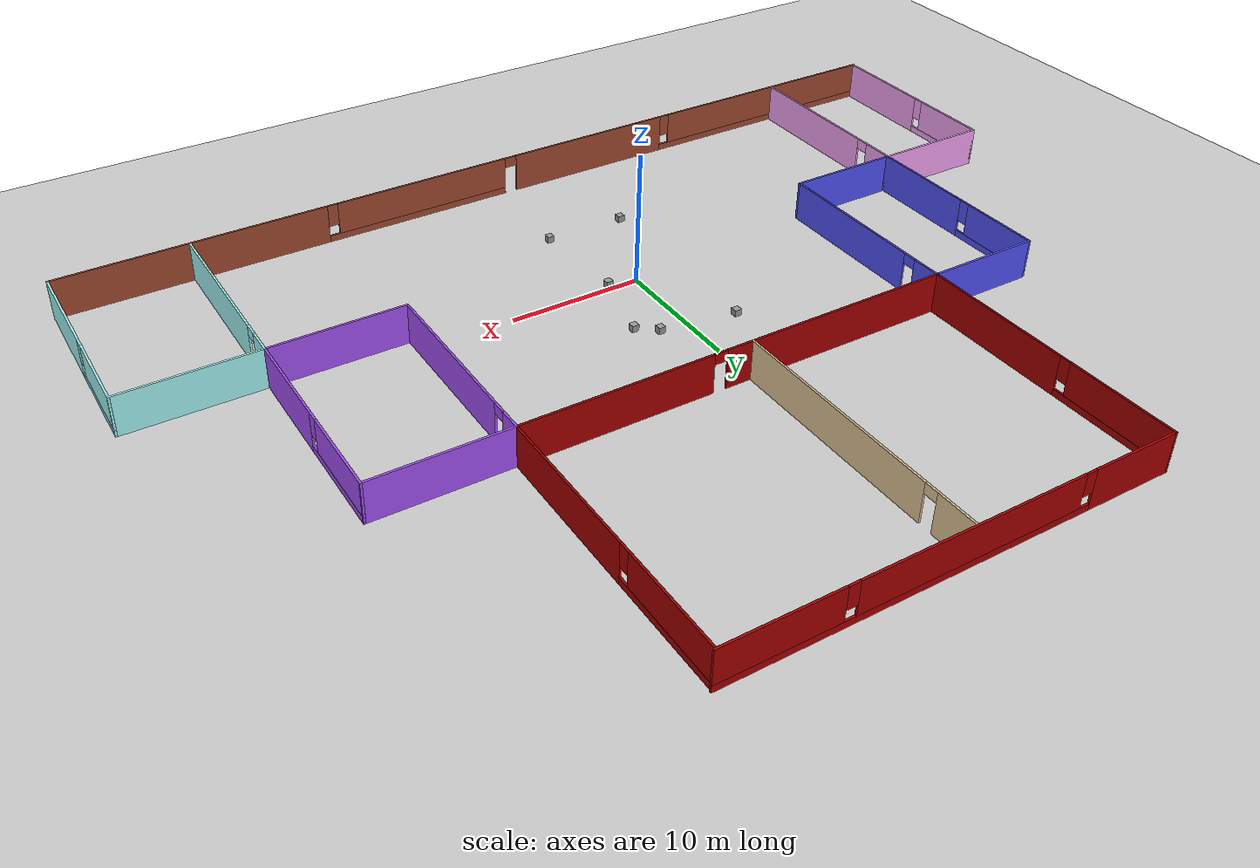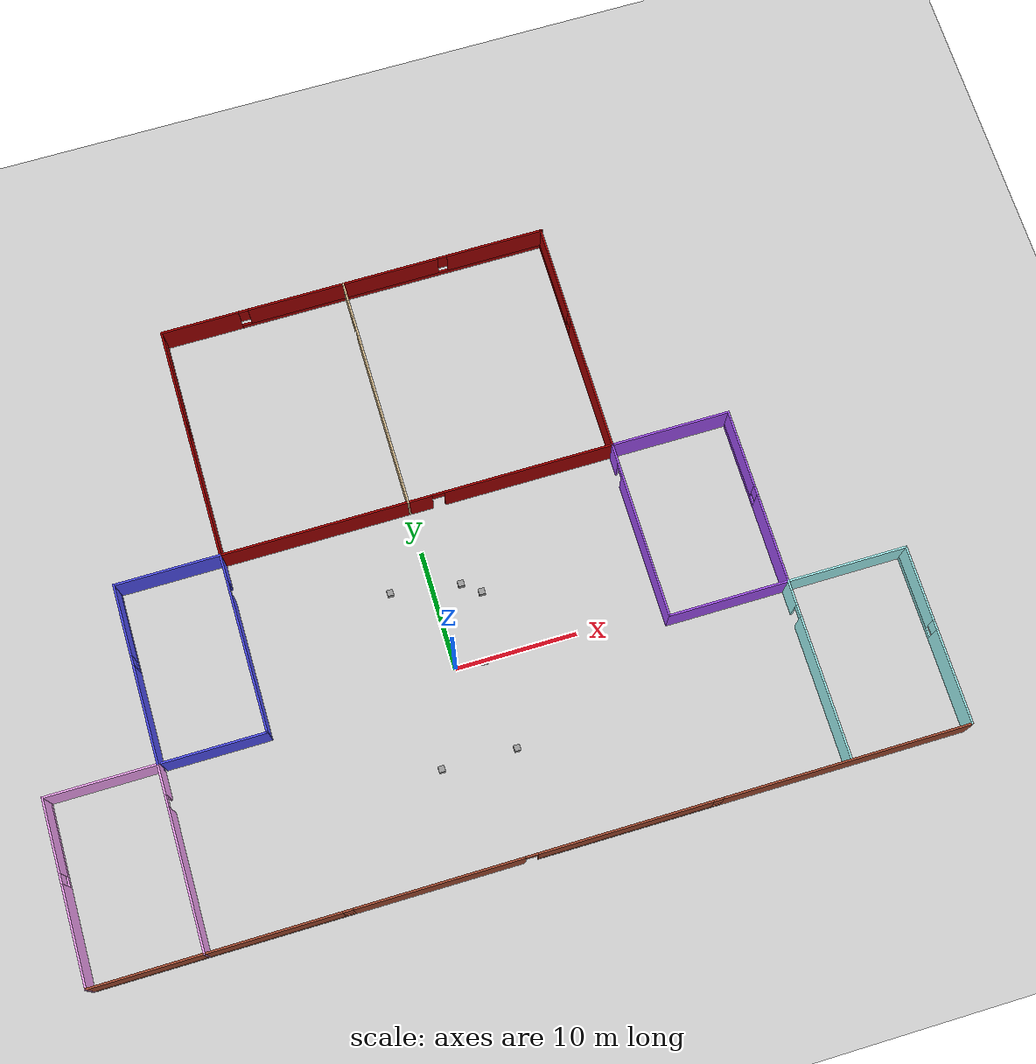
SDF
<sdf version="1.6">
 <world name="default">
  <model name="ground_plane">
   <static>1</static>
   <link name="link">
    <collision name="collision">
     <geometry><plane><normal>0 0 1</normal><size>100 100</size></plane></geometry>
     <surface>
      <contact><collide_bitmask>65535</collide_bitmask></contact>
      <friction><ode><mu>100</mu><mu2>50</mu2></ode></friction>
     </surface>
    </collision>
    <visual name="visual">
     <cast_shadows>0</cast_shadows>
     <geometry><plane><normal>0 0 1</normal><size>100 100</size></plane></geometry>
     <material>
      <script><uri>file://media/materials/scripts/gazebo.material</uri><name>Gazebo/Grey</name></script>
     </material>
    </visual>
   </link>
  </model>
  <model name="myworld">
   <pose>1.87282 8.5844 0 0 -0 0</pose>
   <link name="Wall_13">
    <pose>1e-06 -24.775 0 0 -0 3.14159</pose>
    <visual name="Wall_13_Visual_0">
     <pose>-24.8847 0 1.5 0 -0 0</pose>
     <geometry><box><size>20.2306 0.15 3</size></box></geometry>
     <material>
      <script><uri>file://media/materials/scripts/gazebo.material</uri><name>Gazebo/Bricks</name></script>
      <ambient>1 1 1 1</ambient>
     </material>
     <meta><layer>0</layer></meta>
    </visual>
    <collision name="Wall_13_Collision_0">
     <geometry><box><size>20.2306 0.15 3</size></box></geometry>
     <pose>-24.8847 0 1.5 0 -0 0</pose>
    </collision>
    <visual name="Wall_13_Visual_1">
     <pose>7.72446 0 1.5 0 -0 0</pose>
     <geometry><box><size>13.4735 0.15 3</size></box></geometry>
     <material>
      <script><uri>file://media/materials/scripts/gazebo.material</uri><name>Gazebo/Bricks</name></script>
      <ambient>1 1 1 1</ambient>
     </material>
     <meta><layer>0</layer></meta>
    </visual>
    <collision name="Wall_13_Collision_1">
     <geometry><box><size>13.4735 0.15 3</size></box></geometry>
     <pose>7.72446 0 1.5 0 -0 0</pose>
    </collision>
    <visual name="Wall_13_Visual_2">
     <pose>-7.39085 0 0.25 0 -0 0</pose>
     <geometry><box><size>14.7571 0.15 0.5</size></box></geometry>
     <material>
      <script><uri>file://media/materials/scripts/gazebo.material</uri><name>Gazebo/Bricks</name></script>
      <ambient>1 1 1 1</ambient>
     </material>
     <meta><layer>0</layer></meta>
    </visual>
    <collision name="Wall_13_Collision_2">
     <geometry><box><size>14.7571 0.15 0.5</size></box></geometry>
     <pose>-7.39085 0 0.25 0 -0 0</pose>
    </collision>
    <visual name="Wall_13_Visual_3">
     <pose>24.7306 0 0.25 0 -0 0</pose>
     <geometry><box><size>20.5388 0.15 0.5</size></box></geometry>
     <material>
      <script><uri>file://media/materials/scripts/gazebo.material</uri><name>Gazebo/Bricks</name></script>
      <ambient>1 1 1 1</ambient>
     </material>
     <meta><layer>0</layer></meta>
    </visual>
    <collision name="Wall_13_Collision_3">
     <geometry><box><size>20.5388 0.15 0.5</size></box></geometry>
     <pose>24.7306 0 0.25 0 -0 0</pose>
    </collision>
    <visual name="Wall_13_Visual_5">
     <pose>-6.99085 0 1.75 0 -0 0</pose>
     <geometry><box><size>13.9571 0.15 2.5</size></box></geometry>
     <material>
      <script><uri>file://media/materials/scripts/gazebo.material</uri><name>Gazebo/Bricks</name></script>
      <ambient>1 1 1 1</ambient>
     </material>
     <meta><layer>0</layer></meta>
    </visual>
    <collision name="Wall_13_Collision_5">
     <geometry><box><size>13.9571 0.15 2.5</size></box></geometry>
     <pose>-6.99085 0 1.75 0 -0 0</pose>
    </collision>
    <visual name="Wall_13_Visual_6">
     <pose>-6.99085 0 1.75 0 -0 0</pose>
     <geometry><box><size>13.9571 0.15 2.5</size></box></geometry>
     <material>
      <script><uri>file://media/materials/scripts/gazebo.material</uri><name>Gazebo/Bricks</name></script>
      <ambient>1 1 1 1</ambient>
     </material>
     <meta><layer>0</layer></meta>
    </visual>
    <collision name="Wall_13_Collision_6">
     <geometry><box><size>13.9571 0.15 2.5</size></box></geometry>
     <pose>-6.99085 0 1.75 0 -0 0</pose>
    </collision>
    <visual name="Wall_13_Visual_7">
     <pose>25.1306 0 1.75 0 -0 0</pose>
     <geometry><box><size>19.7388 0.15 2.5</size></box></geometry>
     <material>
      <script><uri>file://media/materials/scripts/gazebo.material</uri><name>Gazebo/Bricks</name></script>
      <ambient>1 1 1 1</ambient>
     </material>
     <meta><layer>0</layer></meta>
    </visual>
    <collision name="Wall_13_Collision_7">
     <geometry><box><size>19.7388 0.15 2.5</size></box></geometry>
     <pose>25.1306 0 1.75 0 -0 0</pose>
    </collision>
    <visual name="Wall_13_Visual_8">
     <pose>-14.3694 0 2.15 0 -0 0</pose>
     <geometry><box><size>0.8 0.15 1.7</size></box></geometry>
     <material>
      <script><uri>file://media/materials/scripts/gazebo.material</uri><name>Gazebo/Bricks</name></script>
      <ambient>1 1 1 1</ambient>
     </material>
     <meta><layer>0</layer></meta>
    </visual>
    <collision name="Wall_13_Collision_8">
     <geometry><box><size>0.8 0.15 1.7</size></box></geometry>
     <pose>-14.3694 0 2.15 0 -0 0</pose>
    </collision>
    <visual name="Wall_13_Visual_9">
     <pose>14.8612 0 2.15 0 -0 0</pose>
     <geometry><box><size>0.8 0.15 1.7</size></box></geometry>
     <material>
      <script><uri>file://media/materials/scripts/gazebo.material</uri><name>Gazebo/Bricks</name></script>
      <ambient>1 1 1 1</ambient>
     </material>
     <meta><layer>0</layer></meta>
    </visual>
    <collision name="Wall_13_Collision_9">
     <geometry><box><size>0.8 0.15 1.7</size></box></geometry>
     <pose>14.8612 0 2.15 0 -0 0</pose>
    </collision>
    <visual name="Wall_13_Visual_10">
     <pose>0.487698 0 2.6 0 -0 0</pose>
     <geometry><box><size>1 0.15 0.8</size></box></geometry>
     <material>
      <script><uri>file://media/materials/scripts/gazebo.material</uri><name>Gazebo/Bricks</name></script>
      <ambient>1 1 1 1</ambient>
     </material>
     <meta><layer>0</layer></meta>
    </visual>
    <collision name="Wall_13_Collision_10">
     <geometry><box><size>1 0.15 0.8</size></box></geometry>
     <pose>0.487698 0 2.6 0 -0 0</pose>
    </collision>
    <visual name="Wall_13_Visual_11">
     <pose>0.487698 0 2.6 0 -0 0</pose>
     <geometry><box><size>1 0.15 0.8</size></box></geometry>
     <material>
      <script><uri>file://media/materials/scripts/gazebo.material</uri><name>Gazebo/Bricks</name></script>
      <ambient>1 1 1 1</ambient>
     </material>
     <meta><layer>0</layer></meta>
    </visual>
    <collision name="Wall_13_Collision_11">
     <geometry><box><size>1 0.15 0.8</size></box></geometry>
     <pose>0.487698 0 2.6 0 -0 0</pose>
    </collision>
   </link>
   <link name="Wall_14">
    <pose>-34.925 -17.35 0 0 -0 1.5708</pose>
    <visual name="Wall_14_Visual_0">
     <pose>-3.43526 0 1.5 0 -0 0</pose>
     <geometry><box><size>8.12947 0.15 3</size></box></geometry>
     <material>
      <script><uri>file://media/materials/scripts/gazebo.material</uri><name>Gazebo/Grey</name></script>
      <ambient>1 0.666667 1 1</ambient>
     </material>
     <meta><layer>0</layer></meta>
    </visual>
    <collision name="Wall_14_Collision_0">
     <geometry><box><size>8.12947 0.15 3</size></box></geometry>
     <pose>-3.43526 0 1.5 0 -0 0</pose>
    </collision>
    <visual name="Wall_14_Visual_1">
     <pose>4.06474 0 0.25 0 -0 0</pose>
     <geometry><box><size>6.87052 0.15 0.5</size></box></geometry>
     <material>
      <script><uri>file://media/materials/scripts/gazebo.material</uri><name>Gazebo/Grey</name></script>
      <ambient>1 0.666667 1 1</ambient>
     </material>
     <meta><layer>0</layer></meta>
    </visual>
    <collision name="Wall_14_Collision_1">
     <geometry><box><size>6.87052 0.15 0.5</size></box></geometry>
     <pose>4.06474 0 0.25 0 -0 0</pose>
    </collision>
    <visual name="Wall_14_Visual_2">
     <pose>4.46474 0 1.75 0 -0 0</pose>
     <geometry><box><size>6.07052 0.15 2.5</size></box></geometry>
     <material>
      <script><uri>file://media/materials/scripts/gazebo.material</uri><name>Gazebo/Grey</name></script>
      <ambient>1 0.666667 1 1</ambient>
     </material>
     <meta><layer>0</layer></meta>
    </visual>
    <collision name="Wall_14_Collision_2">
     <geometry><box><size>6.07052 0.15 2.5</size></box></geometry>
     <pose>4.46474 0 1.75 0 -0 0</pose>
    </collision>
    <visual name="Wall_14_Visual_3">
     <pose>1.02947 0 2.15 0 -0 0</pose>
     <geometry><box><size>0.8 0.15 1.7</size></box></geometry>
     <material>
      <script><uri>file://media/materials/scripts/gazebo.material</uri><name>Gazebo/Grey</name></script>
      <ambient>1 0.666667 1 1</ambient>
     </material>
     <meta><layer>0</layer></meta>
    </visual>
    <collision name="Wall_14_Collision_3">
     <geometry><box><size>0.8 0.15 1.7</size></box></geometry>
     <pose>1.02947 0 2.15 0 -0 0</pose>
    </collision>
   </link>
   <link name="Wall_15">
    <collision name="Wall_15_Collision">
     <geometry><box><size>9.165 0.15 3</size></box></geometry>
     <pose>0 0 1.5 0 -0 0</pose>
    </collision>
    <visual name="Wall_15_Visual">
     <pose>0 0 1.5 0 -0 0</pose>
     <geometry><box><size>9.165 0.15 3</size></box></geometry>
     <material>
      <script><uri>file://media/materials/scripts/gazebo.material</uri><name>Gazebo/Grey</name></script>
      <ambient>1 0.666667 1 1</ambient>
     </material>
     <meta><layer>0</layer></meta>
    </visual>
    <pose>-30.4175 -9.925 0 0 -0 0</pose>
   </link>
   <link name="Wall_21">
    <pose>-25.91 -2.5 0 0 -0 1.5708</pose>
    <visual name="Wall_21_Visual_0">
     <pose>-3.41555 0 1.5 0 -0 0</pose>
     <geometry><box><size>8.16889 0.15 3</size></box></geometry>
     <material>
      <script><uri>file://media/materials/scripts/gazebo.material</uri><name>Gazebo/Grey</name></script>
      <ambient>0.333333 0.333333 1 1</ambient>
     </material>
     <meta><layer>0</layer></meta>
    </visual>
    <collision name="Wall_21_Collision_0">
     <geometry><box><size>8.16889 0.15 3</size></box></geometry>
     <pose>-3.41555 0 1.5 0 -0 0</pose>
    </collision>
    <visual name="Wall_21_Visual_1">
     <pose>4.08445 0 0.25 0 -0 0</pose>
     <geometry><box><size>6.83111 0.15 0.5</size></box></geometry>
     <material>
      <script><uri>file://media/materials/scripts/gazebo.material</uri><name>Gazebo/Grey</name></script>
      <ambient>0.333333 0.333333 1 1</ambient>
     </material>
     <meta><layer>0</layer></meta>
    </visual>
    <collision name="Wall_21_Collision_1">
     <geometry><box><size>6.83111 0.15 0.5</size></box></geometry>
     <pose>4.08445 0 0.25 0 -0 0</pose>
    </collision>
    <visual name="Wall_21_Visual_2">
     <pose>4.48445 0 1.75 0 -0 0</pose>
     <geometry><box><size>6.03111 0.15 2.5</size></box></geometry>
     <material>
      <script><uri>file://media/materials/scripts/gazebo.material</uri><name>Gazebo/Grey</name></script>
      <ambient>0.333333 0.333333 1 1</ambient>
     </material>
     <meta><layer>0</layer></meta>
    </visual>
    <collision name="Wall_21_Collision_2">
     <geometry><box><size>6.03111 0.15 2.5</size></box></geometry>
     <pose>4.48445 0 1.75 0 -0 0</pose>
    </collision>
    <visual name="Wall_21_Visual_3">
     <pose>1.06889 0 2.15 0 -0 0</pose>
     <geometry><box><size>0.8 0.15 1.7</size></box></geometry>
     <material>
      <script><uri>file://media/materials/scripts/gazebo.material</uri><name>Gazebo/Grey</name></script>
      <ambient>0.333333 0.333333 1 1</ambient>
     </material>
     <meta><layer>0</layer></meta>
    </visual>
    <collision name="Wall_21_Collision_3">
     <geometry><box><size>0.8 0.15 1.7</size></box></geometry>
     <pose>1.06889 0 2.15 0 -0 0</pose>
    </collision>
   </link>
   <link name="Wall_22">
    <collision name="Wall_22_Collision">
     <geometry><box><size>8.786 0.15 3</size></box></geometry>
     <pose>0 0 1.5 0 -0 0</pose>
    </collision>
    <visual name="Wall_22_Visual">
     <pose>0 0 1.5 0 -0 0</pose>
     <geometry><box><size>8.786 0.15 3</size></box></geometry>
     <material>
      <script><uri>file://media/materials/scripts/gazebo.material</uri><name>Gazebo/Grey</name></script>
      <ambient>0.333333 0.333333 1 1</ambient>
     </material>
     <meta><layer>0</layer></meta>
    </visual>
    <pose>-21.592 4.925 0 0 -0 0</pose>
   </link>
   <link name="Wall_24">
    <pose>-17.274 14.85 0 0 -0 1.5708</pose>
    <visual name="Wall_24_Visual_0">
     <pose>-4.4064 0 1.5 0 -0 0</pose>
     <geometry><box><size>11.1872 0.15 3</size></box></geometry>
     <material>
      <script><uri>file://media/materials/scripts/gazebo.material</uri><name>Gazebo/Grey</name></script>
      <ambient>0.666667 0 0 1</ambient>
     </material>
     <meta><layer>0</layer></meta>
    </visual>
    <collision name="Wall_24_Collision_0">
     <geometry><box><size>11.1872 0.15 3</size></box></geometry>
     <pose>-4.4064 0 1.5 0 -0 0</pose>
    </collision>
    <visual name="Wall_24_Visual_1">
     <pose>5.5936 0 0.25 0 -0 0</pose>
     <geometry><box><size>8.8128 0.15 0.5</size></box></geometry>
     <material>
      <script><uri>file://media/materials/scripts/gazebo.material</uri><name>Gazebo/Grey</name></script>
      <ambient>0.666667 0 0 1</ambient>
     </material>
     <meta><layer>0</layer></meta>
    </visual>
    <collision name="Wall_24_Collision_1">
     <geometry><box><size>8.8128 0.15 0.5</size></box></geometry>
     <pose>5.5936 0 0.25 0 -0 0</pose>
    </collision>
    <visual name="Wall_24_Visual_2">
     <pose>5.9936 0 1.75 0 -0 0</pose>
     <geometry><box><size>8.0128 0.15 2.5</size></box></geometry>
     <material>
      <script><uri>file://media/materials/scripts/gazebo.material</uri><name>Gazebo/Grey</name></script>
      <ambient>0.666667 0 0 1</ambient>
     </material>
     <meta><layer>0</layer></meta>
    </visual>
    <collision name="Wall_24_Collision_2">
     <geometry><box><size>8.0128 0.15 2.5</size></box></geometry>
     <pose>5.9936 0 1.75 0 -0 0</pose>
    </collision>
    <visual name="Wall_24_Visual_3">
     <pose>1.5872 0 2.15 0 -0 0</pose>
     <geometry><box><size>0.8 0.15 1.7</size></box></geometry>
     <material>
      <script><uri>file://media/materials/scripts/gazebo.material</uri><name>Gazebo/Grey</name></script>
      <ambient>0.666667 0 0 1</ambient>
     </material>
     <meta><layer>0</layer></meta>
    </visual>
    <collision name="Wall_24_Collision_3">
     <geometry><box><size>0.8 0.15 1.7</size></box></geometry>
     <pose>1.5872 0 2.15 0 -0 0</pose>
    </collision>
   </link>
   <link name="Wall_25">
    <pose>-0.974 24.775 0 0 -0 0</pose>
    <visual name="Wall_25_Visual_0">
     <pose>-13.0895 0 1.5 0 -0 0</pose>
     <geometry><box><size>6.57101 0.15 3</size></box></geometry>
     <material>
      <script><uri>file://media/materials/scripts/gazebo.material</uri><name>Gazebo/Grey</name></script>
      <ambient>0.666667 0 0 1</ambient>
     </material>
     <meta><layer>0</layer></meta>
    </visual>
    <collision name="Wall_25_Collision_0">
     <geometry><box><size>6.57101 0.15 3</size></box></geometry>
     <pose>-13.0895 0 1.5 0 -0 0</pose>
    </collision>
    <visual name="Wall_25_Visual_1">
     <pose>3.2855 0 0.25 0 -0 0</pose>
     <geometry><box><size>26.179 0.15 0.5</size></box></geometry>
     <material>
      <script><uri>file://media/materials/scripts/gazebo.material</uri><name>Gazebo/Grey</name></script>
      <ambient>0.666667 0 0 1</ambient>
     </material>
     <meta><layer>0</layer></meta>
    </visual>
    <collision name="Wall_25_Collision_1">
     <geometry><box><size>26.179 0.15 0.5</size></box></geometry>
     <pose>3.2855 0 0.25 0 -0 0</pose>
    </collision>
    <visual name="Wall_25_Visual_2">
     <pose>-0.885868 0 1.75 0 -0 0</pose>
     <geometry><box><size>16.2363 0.15 2.5</size></box></geometry>
     <material>
      <script><uri>file://media/materials/scripts/gazebo.material</uri><name>Gazebo/Grey</name></script>
      <ambient>0.666667 0 0 1</ambient>
     </material>
     <meta><layer>0</layer></meta>
    </visual>
    <collision name="Wall_25_Collision_2">
     <geometry><box><size>16.2363 0.15 2.5</size></box></geometry>
     <pose>-0.885868 0 1.75 0 -0 0</pose>
    </collision>
    <visual name="Wall_25_Visual_3">
     <pose>12.2036 0 1.75 0 -0 0</pose>
     <geometry><box><size>8.34274 0.15 2.5</size></box></geometry>
     <material>
      <script><uri>file://media/materials/scripts/gazebo.material</uri><name>Gazebo/Grey</name></script>
      <ambient>0.666667 0 0 1</ambient>
     </material>
     <meta><layer>0</layer></meta>
    </visual>
    <collision name="Wall_25_Collision_3">
     <geometry><box><size>8.34274 0.15 2.5</size></box></geometry>
     <pose>12.2036 0 1.75 0 -0 0</pose>
    </collision>
    <visual name="Wall_25_Visual_4">
     <pose>-9.40399 0 2.15 0 -0 0</pose>
     <geometry><box><size>0.8 0.15 1.7</size></box></geometry>
     <material>
      <script><uri>file://media/materials/scripts/gazebo.material</uri><name>Gazebo/Grey</name></script>
      <ambient>0.666667 0 0 1</ambient>
     </material>
     <meta><layer>0</layer></meta>
    </visual>
    <collision name="Wall_25_Collision_4">
     <geometry><box><size>0.8 0.15 1.7</size></box></geometry>
     <pose>-9.40399 0 2.15 0 -0 0</pose>
    </collision>
    <visual name="Wall_25_Visual_5">
     <pose>7.63226 0 2.15 0 -0 0</pose>
     <geometry><box><size>0.8 0.15 1.7</size></box></geometry>
     <material>
      <script><uri>file://media/materials/scripts/gazebo.material</uri><name>Gazebo/Grey</name></script>
      <ambient>0.666667 0 0 1</ambient>
     </material>
     <meta><layer>0</layer></meta>
    </visual>
    <collision name="Wall_25_Collision_5">
     <geometry><box><size>0.8 0.15 1.7</size></box></geometry>
     <pose>7.63226 0 2.15 0 -0 0</pose>
    </collision>
   </link>
   <link name="Wall_27">
    <pose>34.925 -17.35 0 0 -0 1.5708</pose>
    <visual name="Wall_27_Visual_0">
     <pose>-3.569 0 1.5 0 -0 0</pose>
     <geometry><box><size>7.862 0.15 3</size></box></geometry>
     <material>
      <script><uri>file://media/materials/scripts/gazebo.material</uri><name>Gazebo/Grey</name></script>
      <ambient>0.666667 1 1 1</ambient>
     </material>
     <meta><layer>0</layer></meta>
    </visual>
    <collision name="Wall_27_Collision_0">
     <geometry><box><size>7.862 0.15 3</size></box></geometry>
     <pose>-3.569 0 1.5 0 -0 0</pose>
    </collision>
    <visual name="Wall_27_Visual_1">
     <pose>3.931 0 0.25 0 -0 0</pose>
     <geometry><box><size>7.138 0.15 0.5</size></box></geometry>
     <material>
      <script><uri>file://media/materials/scripts/gazebo.material</uri><name>Gazebo/Grey</name></script>
      <ambient>0.666667 1 1 1</ambient>
     </material>
     <meta><layer>0</layer></meta>
    </visual>
    <collision name="Wall_27_Collision_1">
     <geometry><box><size>7.138 0.15 0.5</size></box></geometry>
     <pose>3.931 0 0.25 0 -0 0</pose>
    </collision>
    <visual name="Wall_27_Visual_2">
     <pose>4.331 0 1.75 0 -0 0</pose>
     <geometry><box><size>6.338 0.15 2.5</size></box></geometry>
     <material>
      <script><uri>file://media/materials/scripts/gazebo.material</uri><name>Gazebo/Grey</name></script>
      <ambient>0.666667 1 1 1</ambient>
     </material>
     <meta><layer>0</layer></meta>
    </visual>
    <collision name="Wall_27_Collision_2">
     <geometry><box><size>6.338 0.15 2.5</size></box></geometry>
     <pose>4.331 0 1.75 0 -0 0</pose>
    </collision>
    <visual name="Wall_27_Visual_3">
     <pose>0.762001 0 2.15 0 -0 0</pose>
     <geometry><box><size>0.8 0.15 1.7</size></box></geometry>
     <material>
      <script><uri>file://media/materials/scripts/gazebo.material</uri><name>Gazebo/Grey</name></script>
      <ambient>0.666667 1 1 1</ambient>
     </material>
     <meta><layer>0</layer></meta>
    </visual>
    <collision name="Wall_27_Collision_3">
     <geometry><box><size>0.8 0.15 1.7</size></box></geometry>
     <pose>0.762001 0 2.15 0 -0 0</pose>
    </collision>
   </link>
   <link name="Wall_28">
    <collision name="Wall_28_Collision">
     <geometry><box><size>9.997 0.15 3</size></box></geometry>
     <pose>0 0 1.5 0 -0 0</pose>
    </collision>
    <visual name="Wall_28_Visual">
     <pose>0 0 1.5 0 -0 0</pose>
     <geometry><box><size>9.997 0.15 3</size></box></geometry>
     <material>
      <script><uri>file://media/materials/scripts/gazebo.material</uri><name>Gazebo/Grey</name></script>
      <ambient>0.666667 1 1 1</ambient>
     </material>
     <meta><layer>0</layer></meta>
    </visual>
    <pose>30.0015 -9.925 0 0 -0 3.14159</pose>
   </link>
   <link name="Wall_31">
    <pose>25.078 -2.5 0 0 -0 1.5708</pose>
    <visual name="Wall_31_Visual_0">
     <pose>-3.72761 0 1.5 0 -0 0</pose>
     <geometry><box><size>7.54479 0.15 3</size></box></geometry>
     <material>
      <script><uri>file://media/materials/scripts/gazebo.material</uri><name>Gazebo/Grey</name></script>
      <ambient>0.666667 0.333333 1 1</ambient>
     </material>
     <meta><layer>0</layer></meta>
    </visual>
    <collision name="Wall_31_Collision_0">
     <geometry><box><size>7.54479 0.15 3</size></box></geometry>
     <pose>-3.72761 0 1.5 0 -0 0</pose>
    </collision>
    <visual name="Wall_31_Visual_1">
     <pose>3.77239 0 0.25 0 -0 0</pose>
     <geometry><box><size>7.45521 0.15 0.5</size></box></geometry>
     <material>
      <script><uri>file://media/materials/scripts/gazebo.material</uri><name>Gazebo/Grey</name></script>
      <ambient>0.666667 0.333333 1 1</ambient>
     </material>
     <meta><layer>0</layer></meta>
    </visual>
    <collision name="Wall_31_Collision_1">
     <geometry><box><size>7.45521 0.15 0.5</size></box></geometry>
     <pose>3.77239 0 0.25 0 -0 0</pose>
    </collision>
    <visual name="Wall_31_Visual_2">
     <pose>4.17239 0 1.75 0 -0 0</pose>
     <geometry><box><size>6.65521 0.15 2.5</size></box></geometry>
     <material>
      <script><uri>file://media/materials/scripts/gazebo.material</uri><name>Gazebo/Grey</name></script>
      <ambient>0.666667 0.333333 1 1</ambient>
     </material>
     <meta><layer>0</layer></meta>
    </visual>
    <collision name="Wall_31_Collision_2">
     <geometry><box><size>6.65521 0.15 2.5</size></box></geometry>
     <pose>4.17239 0 1.75 0 -0 0</pose>
    </collision>
    <visual name="Wall_31_Visual_3">
     <pose>0.444787 0 2.15 0 -0 0</pose>
     <geometry><box><size>0.8 0.15 1.7</size></box></geometry>
     <material>
      <script><uri>file://media/materials/scripts/gazebo.material</uri><name>Gazebo/Grey</name></script>
      <ambient>0.666667 0.333333 1 1</ambient>
     </material>
     <meta><layer>0</layer></meta>
    </visual>
    <collision name="Wall_31_Collision_3">
     <geometry><box><size>0.8 0.15 1.7</size></box></geometry>
     <pose>0.444787 0 2.15 0 -0 0</pose>
    </collision>
   </link>
   <link name="Wall_32">
    <collision name="Wall_32_Collision">
     <geometry><box><size>9.987 0.15 3</size></box></geometry>
     <pose>0 0 1.5 0 -0 0</pose>
    </collision>
    <visual name="Wall_32_Visual">
     <pose>0 0 1.5 0 -0 0</pose>
     <geometry><box><size>9.987 0.15 3</size></box></geometry>
     <material>
      <script><uri>file://media/materials/scripts/gazebo.material</uri><name>Gazebo/Grey</name></script>
      <ambient>0.666667 0.333333 1 1</ambient>
     </material>
     <meta><layer>0</layer></meta>
    </visual>
    <pose>20.1595 4.925 0 0 -0 3.14159</pose>
   </link>
   <link name="Wall_34">
    <pose>15.241 14.849 0 0 -0 1.5708</pose>
    <visual name="Wall_34_Visual_0">
     <pose>-4.30287 0 1.5 0 -0 0</pose>
     <geometry><box><size>11.3923 0.15 3</size></box></geometry>
     <material>
      <script><uri>file://media/materials/scripts/gazebo.material</uri><name>Gazebo/Grey</name></script>
      <ambient>0.666667 0 0 1</ambient>
     </material>
     <meta><layer>0</layer></meta>
    </visual>
    <collision name="Wall_34_Collision_0">
     <geometry><box><size>11.3923 0.15 3</size></box></geometry>
     <pose>-4.30287 0 1.5 0 -0 0</pose>
    </collision>
    <visual name="Wall_34_Visual_1">
     <pose>5.69613 0 0.25 0 -0 0</pose>
     <geometry><box><size>8.60573 0.15 0.5</size></box></geometry>
     <material>
      <script><uri>file://media/materials/scripts/gazebo.material</uri><name>Gazebo/Grey</name></script>
      <ambient>0.666667 0 0 1</ambient>
     </material>
     <meta><layer>0</layer></meta>
    </visual>
    <collision name="Wall_34_Collision_1">
     <geometry><box><size>8.60573 0.15 0.5</size></box></geometry>
     <pose>5.69613 0 0.25 0 -0 0</pose>
    </collision>
    <visual name="Wall_34_Visual_2">
     <pose>6.09613 0 1.75 0 -0 0</pose>
     <geometry><box><size>7.80573 0.15 2.5</size></box></geometry>
     <material>
      <script><uri>file://media/materials/scripts/gazebo.material</uri><name>Gazebo/Grey</name></script>
      <ambient>0.666667 0 0 1</ambient>
     </material>
     <meta><layer>0</layer></meta>
    </visual>
    <collision name="Wall_34_Collision_2">
     <geometry><box><size>7.80573 0.15 2.5</size></box></geometry>
     <pose>6.09613 0 1.75 0 -0 0</pose>
    </collision>
    <visual name="Wall_34_Visual_3">
     <pose>1.79327 0 2.15 0 -0 0</pose>
     <geometry><box><size>0.8 0.15 1.7</size></box></geometry>
     <material>
      <script><uri>file://media/materials/scripts/gazebo.material</uri><name>Gazebo/Grey</name></script>
      <ambient>0.666667 0 0 1</ambient>
     </material>
     <meta><layer>0</layer></meta>
    </visual>
    <collision name="Wall_34_Collision_3">
     <geometry><box><size>0.8 0.15 1.7</size></box></geometry>
     <pose>1.79327 0 2.15 0 -0 0</pose>
    </collision>
   </link>
   <link name="Wall_37">
    <pose>-25.91 -17.35 0 0 0 -1.5708</pose>
    <visual name="Wall_37_Visual_0">
     <pose>-6.24162 0 1.5 0 -0 0</pose>
     <geometry><box><size>2.51676 0.15 3</size></box></geometry>
     <material>
      <script><uri>file://media/materials/scripts/gazebo.material</uri><name>Gazebo/Grey</name></script>
      <ambient>1 0.666667 1 1</ambient>
     </material>
     <meta><layer>0</layer></meta>
    </visual>
    <collision name="Wall_37_Collision_0">
     <geometry><box><size>2.51676 0.15 3</size></box></geometry>
     <pose>-6.24162 0 1.5 0 -0 0</pose>
    </collision>
    <visual name="Wall_37_Visual_1">
     <pose>1.75838 0 1.5 0 -0 0</pose>
     <geometry><box><size>11.4832 0.15 3</size></box></geometry>
     <material>
      <script><uri>file://media/materials/scripts/gazebo.material</uri><name>Gazebo/Grey</name></script>
      <ambient>1 0.666667 1 1</ambient>
     </material>
     <meta><layer>0</layer></meta>
    </visual>
    <collision name="Wall_37_Collision_1">
     <geometry><box><size>11.4832 0.15 3</size></box></geometry>
     <pose>1.75838 0 1.5 0 -0 0</pose>
    </collision>
    <visual name="Wall_37_Visual_3">
     <pose>-4.48324 0 2.6 0 -0 0</pose>
     <geometry><box><size>1 0.15 0.8</size></box></geometry>
     <material>
      <script><uri>file://media/materials/scripts/gazebo.material</uri><name>Gazebo/Grey</name></script>
      <ambient>1 0.666667 1 1</ambient>
     </material>
     <meta><layer>0</layer></meta>
    </visual>
    <collision name="Wall_37_Collision_3">
     <geometry><box><size>1 0.15 0.8</size></box></geometry>
     <pose>-4.48324 0 2.6 0 -0 0</pose>
    </collision>
   </link>
   <link name="Wall_40">
    <pose>-17.274 -2.5 0 0 0 -1.5708</pose>
    <visual name="Wall_40_Visual_0">
     <pose>-6.38157 0 1.5 0 -0 0</pose>
     <geometry><box><size>2.23685 0.15 3</size></box></geometry>
     <material>
      <script><uri>file://media/materials/scripts/gazebo.material</uri><name>Gazebo/Grey</name></script>
      <ambient>0.333333 0.333333 1 1</ambient>
     </material>
     <meta><layer>0</layer></meta>
    </visual>
    <collision name="Wall_40_Collision_0">
     <geometry><box><size>2.23685 0.15 3</size></box></geometry>
     <pose>-6.38157 0 1.5 0 -0 0</pose>
    </collision>
    <visual name="Wall_40_Visual_1">
     <pose>1.61843 0 1.5 0 -0 0</pose>
     <geometry><box><size>11.7631 0.15 3</size></box></geometry>
     <material>
      <script><uri>file://media/materials/scripts/gazebo.material</uri><name>Gazebo/Grey</name></script>
      <ambient>0.333333 0.333333 1 1</ambient>
     </material>
     <meta><layer>0</layer></meta>
    </visual>
    <collision name="Wall_40_Collision_1">
     <geometry><box><size>11.7631 0.15 3</size></box></geometry>
     <pose>1.61843 0 1.5 0 -0 0</pose>
    </collision>
    <visual name="Wall_40_Visual_3">
     <pose>-4.76315 0 2.6 0 -0 0</pose>
     <geometry><box><size>1 0.15 0.8</size></box></geometry>
     <material>
      <script><uri>file://media/materials/scripts/gazebo.material</uri><name>Gazebo/Grey</name></script>
      <ambient>0.333333 0.333333 1 1</ambient>
     </material>
     <meta><layer>0</layer></meta>
    </visual>
    <collision name="Wall_40_Collision_3">
     <geometry><box><size>1 0.15 0.8</size></box></geometry>
     <pose>-4.76315 0 2.6 0 -0 0</pose>
    </collision>
   </link>
   <link name="Wall_41">
    <collision name="Wall_41_Collision">
     <geometry><box><size>8.5 0.15 3</size></box></geometry>
     <pose>0 0 1.5 0 -0 0</pose>
    </collision>
    <visual name="Wall_41_Visual">
     <pose>0 0 1.5 0 -0 0</pose>
     <geometry><box><size>8.5 0.15 3</size></box></geometry>
     <material>
      <script><uri>file://media/materials/scripts/gazebo.material</uri><name>Gazebo/Grey</name></script>
      <ambient>0.333333 0.333333 1 1</ambient>
     </material>
     <meta><layer>0</layer></meta>
    </visual>
    <pose>-21.449 -9.925 0 0 -0 3.14159</pose>
   </link>
   <link name="Wall_43">
    <pose>-1.059 4.925 0 0 -0 0</pose>
    <visual name="Wall_43_Visual_0">
     <pose>-7.58275 0 1.5 0 -0 0</pose>
     <geometry><box><size>17.5845 0.15 3</size></box></geometry>
     <material>
      <script><uri>file://media/materials/scripts/gazebo.material</uri><name>Gazebo/Grey</name></script>
      <ambient>0.666667 0 0 1</ambient>
     </material>
     <meta><layer>0</layer></meta>
    </visual>
    <collision name="Wall_43_Collision_0">
     <geometry><box><size>17.5845 0.15 3</size></box></geometry>
     <pose>-7.58275 0 1.5 0 -0 0</pose>
    </collision>
    <visual name="Wall_43_Visual_1">
     <pose>9.29224 0 1.5 0 -0 0</pose>
     <geometry><box><size>14.1655 0.15 3</size></box></geometry>
     <material>
      <script><uri>file://media/materials/scripts/gazebo.material</uri><name>Gazebo/Grey</name></script>
      <ambient>0.666667 0 0 1</ambient>
     </material>
     <meta><layer>0</layer></meta>
    </visual>
    <collision name="Wall_43_Collision_1">
     <geometry><box><size>14.1655 0.15 3</size></box></geometry>
     <pose>9.29224 0 1.5 0 -0 0</pose>
    </collision>
    <visual name="Wall_43_Visual_3">
     <pose>1.70949 0 2.6 0 -0 0</pose>
     <geometry><box><size>1 0.15 0.8</size></box></geometry>
     <material>
      <script><uri>file://media/materials/scripts/gazebo.material</uri><name>Gazebo/Grey</name></script>
      <ambient>0.666667 0 0 1</ambient>
     </material>
     <meta><layer>0</layer></meta>
    </visual>
    <collision name="Wall_43_Collision_3">
     <geometry><box><size>1 0.15 0.8</size></box></geometry>
     <pose>1.70949 0 2.6 0 -0 0</pose>
    </collision>
   </link>
   <link name="Wall_47">
    <pose>-1.828 14.819 0 0 0 -1.5708</pose>
    <visual name="Wall_47_Visual_0">
     <pose>-8.46017 0 1.5 0 -0 0</pose>
     <geometry><box><size>3.07967 0.15 3</size></box></geometry>
     <material>
      <script><uri>file://media/materials/scripts/gazebo.material</uri><name>Gazebo/Grey</name></script>
      <ambient>0.921569 0.807843 0.615686 1</ambient>
     </material>
     <meta><layer>0</layer></meta>
    </visual>
    <collision name="Wall_47_Collision_0">
     <geometry><box><size>3.07967 0.15 3</size></box></geometry>
     <pose>-8.46017 0 1.5 0 -0 0</pose>
    </collision>
    <visual name="Wall_47_Visual_1">
     <pose>2.03983 0 1.5 0 -0 0</pose>
     <geometry><box><size>15.9203 0.15 3</size></box></geometry>
     <material>
      <script><uri>file://media/materials/scripts/gazebo.material</uri><name>Gazebo/Grey</name></script>
      <ambient>0.921569 0.807843 0.615686 1</ambient>
     </material>
     <meta><layer>0</layer></meta>
    </visual>
    <collision name="Wall_47_Collision_1">
     <geometry><box><size>15.9203 0.15 3</size></box></geometry>
     <pose>2.03983 0 1.5 0 -0 0</pose>
    </collision>
    <visual name="Wall_47_Visual_3">
     <pose>-6.42033 0 2.61 0 -0 0</pose>
     <geometry><box><size>1 0.15 0.78</size></box></geometry>
     <material>
      <script><uri>file://media/materials/scripts/gazebo.material</uri><name>Gazebo/Grey</name></script>
      <ambient>0.921569 0.807843 0.615686 1</ambient>
     </material>
     <meta><layer>0</layer></meta>
    </visual>
    <collision name="Wall_47_Collision_3">
     <geometry><box><size>1 0.15 0.78</size></box></geometry>
     <pose>-6.42033 0 2.61 0 -0 0</pose>
    </collision>
   </link>
   <link name="Wall_49">
    <pose>25.078 -17.35 0 0 0 -1.5708</pose>
    <visual name="Wall_49_Visual_0">
     <pose>-6.44514 0 1.5 0 -0 0</pose>
     <geometry><box><size>2.10971 0.15 3</size></box></geometry>
     <material>
      <script><uri>file://media/materials/scripts/gazebo.material</uri><name>Gazebo/Grey</name></script>
      <ambient>0.666667 1 1 1</ambient>
     </material>
     <meta><layer>0</layer></meta>
    </visual>
    <collision name="Wall_49_Collision_0">
     <geometry><box><size>2.10971 0.15 3</size></box></geometry>
     <pose>-6.44514 0 1.5 0 -0 0</pose>
    </collision>
    <visual name="Wall_49_Visual_1">
     <pose>1.55486 0 1.5 0 -0 0</pose>
     <geometry><box><size>11.8903 0.15 3</size></box></geometry>
     <material>
      <script><uri>file://media/materials/scripts/gazebo.material</uri><name>Gazebo/Grey</name></script>
      <ambient>0.666667 1 1 1</ambient>
     </material>
     <meta><layer>0</layer></meta>
    </visual>
    <collision name="Wall_49_Collision_1">
     <geometry><box><size>11.8903 0.15 3</size></box></geometry>
     <pose>1.55486 0 1.5 0 -0 0</pose>
    </collision>
    <visual name="Wall_49_Visual_3">
     <pose>-4.89029 0 2.6 0 -0 0</pose>
     <geometry><box><size>1 0.15 0.8</size></box></geometry>
     <material>
      <script><uri>file://media/materials/scripts/gazebo.material</uri><name>Gazebo/Grey</name></script>
      <ambient>0.666667 1 1 1</ambient>
     </material>
     <meta><layer>0</layer></meta>
    </visual>
    <collision name="Wall_49_Collision_3">
     <geometry><box><size>1 0.15 0.8</size></box></geometry>
     <pose>-4.89029 0 2.6 0 -0 0</pose>
    </collision>
   </link>
   <link name="Wall_51">
    <pose>15.241 -2.5 0 0 0 -1.5708</pose>
    <visual name="Wall_51_Visual_0">
     <pose>-6.63801 0 1.5 0 -0 0</pose>
     <geometry><box><size>1.72398 0.15 3</size></box></geometry>
     <material>
      <script><uri>file://media/materials/scripts/gazebo.material</uri><name>Gazebo/Grey</name></script>
      <ambient>0.666667 0.333333 1 1</ambient>
     </material>
     <meta><layer>0</layer></meta>
    </visual>
    <collision name="Wall_51_Collision_0">
     <geometry><box><size>1.72398 0.15 3</size></box></geometry>
     <pose>-6.63801 0 1.5 0 -0 0</pose>
    </collision>
    <visual name="Wall_51_Visual_1">
     <pose>1.36199 0 1.5 0 -0 0</pose>
     <geometry><box><size>12.276 0.15 3</size></box></geometry>
     <material>
      <script><uri>file://media/materials/scripts/gazebo.material</uri><name>Gazebo/Grey</name></script>
      <ambient>0.666667 0.333333 1 1</ambient>
     </material>
     <meta><layer>0</layer></meta>
    </visual>
    <collision name="Wall_51_Collision_1">
     <geometry><box><size>12.276 0.15 3</size></box></geometry>
     <pose>1.36199 0 1.5 0 -0 0</pose>
    </collision>
    <visual name="Wall_51_Visual_3">
     <pose>-5.27602 0 2.6 0 -0 0</pose>
     <geometry><box><size>1 0.15 0.8</size></box></geometry>
     <material>
      <script><uri>file://media/materials/scripts/gazebo.material</uri><name>Gazebo/Grey</name></script>
      <ambient>0.666667 0.333333 1 1</ambient>
     </material>
     <meta><layer>0</layer></meta>
    </visual>
    <collision name="Wall_51_Collision_3">
     <geometry><box><size>1 0.15 0.8</size></box></geometry>
     <pose>-5.27602 0 2.6 0 -0 0</pose>
    </collision>
   </link>
   <link name="Wall_52">
    <collision name="Wall_52_Collision">
     <geometry><box><size>9.987 0.15 3</size></box></geometry>
     <pose>0 0 1.5 0 -0 0</pose>
    </collision>
    <visual name="Wall_52_Visual">
     <pose>0 0 1.5 0 -0 0</pose>
     <geometry><box><size>9.987 0.15 3</size></box></geometry>
     <material>
      <script><uri>file://media/materials/scripts/gazebo.material</uri><name>Gazebo/Grey</name></script>
      <ambient>0.666667 0.333333 1 1</ambient>
     </material>
     <meta><layer>0</layer></meta>
    </visual>
    <pose>20.1595 -9.925 0 0 -0 0</pose>
   </link>
   <static>1</static>
  </model>
  <model name="Untitled_clone_7">
   <link name="link_0">
    <inertial>
     <mass>1</mass>
     <inertia>
      <ixx>0.166667</ixx>
      <ixy>0</ixy>
      <ixz>0</ixz>
      <iyy>0.166667</iyy>
      <iyz>0</iyz>
      <izz>0.166667</izz>
     </inertia>
    </inertial>
    <visual name="visual">
     <geometry><box><size>0.5 0.5 0.5</size></box></geometry>
     <material>
      <lighting>1</lighting>
      <script><uri>file://media/materials/scripts/gazebo.material</uri><name>Gazebo/Grey</name></script>
      <shader type="vertex"><normal_map>__default__</normal_map></shader>
      <ambient>0 0 0 1</ambient>
      <diffuse>0 0 0 1</diffuse>
      <specular>0 0 0 1</specular>
      <emissive>0 0 0 1</emissive>
     </material>
    </visual>
    <collision name="collision">
     <geometry><box><size>0.5 0.5 0.5</size></box></geometry>
     <surface>
      <friction>
       <ode><mu>1</mu><mu2>1</mu2><fdir1>0 0 0</fdir1><slip1>0</slip1><slip2>0</slip2></ode>
       <torsional>
        <coefficient>1</coefficient>
        <patch_radius>0</patch_radius>
        <surface_radius>0</surface_radius>
        <use_patch_radius>1</use_patch_radius>
        <ode><slip>0</slip></ode>
       </torsional>
      </friction>
      <bounce><restitution_coefficient>0</restitution_coefficient><threshold>1e+06</threshold></bounce>
      <contact>
       <collide_without_contact>0</collide_without_contact>
       <collide_without_contact_bitmask>1</collide_without_contact_bitmask>
       <collide_bitmask>1</collide_bitmask>
       <ode>
        <soft_cfm>0</soft_cfm>
        <soft_erp>0.2</soft_erp>
        <kp>1e+13</kp>
        <kd>1</kd>
        <max_vel>0.01</max_vel>
        <min_depth>0</min_depth>
       </ode>
       <bullet>
        <split_impulse>1</split_impulse>
        <split_impulse_penetration_threshold>-0.01</split_impulse_penetration_threshold>
        <soft_cfm>0</soft_cfm>
        <soft_erp>0.2</soft_erp>
        <kp>1e+13</kp>
        <kd>1</kd>
       </bullet>
      </contact>
     </surface>
    </collision>
   </link>
   <static>0</static>
   <pose>2.30917 6.48224 0.5 0 -0 0</pose>
  </model>
  <model name="Untitled_clone_9">
   <link name="link_0">
    <inertial>
     <mass>1</mass>
     <inertia>
      <ixx>0.166667</ixx>
      <ixy>0</ixy>
      <ixz>0</ixz>
      <iyy>0.166667</iyy>
      <iyz>0</iyz>
      <izz>0.166667</izz>
     </inertia>
    </inertial>
    <visual name="visual">
     <geometry><box><size>0.5 0.5 0.5</size></box></geometry>
     <material>
      <lighting>1</lighting>
      <script><uri>file://media/materials/scripts/gazebo.material</uri><name>Gazebo/Grey</name></script>
      <shader type="vertex"><normal_map>__default__</normal_map></shader>
      <ambient>0 0 0 1</ambient>
      <diffuse>0 0 0 1</diffuse>
      <specular>0 0 0 1</specular>
      <emissive>0 0 0 1</emissive>
     </material>
    </visual>
    <collision name="collision">
     <geometry><box><size>0.5 0.5 0.5</size></box></geometry>
     <surface>
      <friction>
       <ode><mu>1</mu><mu2>1</mu2><fdir1>0 0 0</fdir1><slip1>0</slip1><slip2>0</slip2></ode>
       <torsional>
        <coefficient>1</coefficient>
        <patch_radius>0</patch_radius>
        <surface_radius>0</surface_radius>
        <use_patch_radius>1</use_patch_radius>
        <ode><slip>0</slip></ode>
       </torsional>
      </friction>
      <bounce><restitution_coefficient>0</restitution_coefficient><threshold>1e+06</threshold></bounce>
      <contact>
       <collide_without_contact>0</collide_without_contact>
       <collide_without_contact_bitmask>1</collide_without_contact_bitmask>
       <collide_bitmask>1</collide_bitmask>
       <ode>
        <soft_cfm>0</soft_cfm>
        <soft_erp>0.2</soft_erp>
        <kp>1e+13</kp>
        <kd>1</kd>
        <max_vel>0.01</max_vel>
        <min_depth>0</min_depth>
       </ode>
       <bullet>
        <split_impulse>1</split_impulse>
        <split_impulse_penetration_threshold>-0.01</split_impulse_penetration_threshold>
        <soft_cfm>0</soft_cfm>
        <soft_erp>0.2</soft_erp>
        <kp>1e+13</kp>
        <kd>1</kd>
       </bullet>
      </contact>
     </surface>
    </collision>
   </link>
   <static>0</static>
   <pose>3.71834 5.37161 0.5 0 -0 0</pose>
  </model>
  <model name="Untitled_clone_11">
   <link name="link_0">
    <inertial>
     <mass>1</mass>
     <inertia>
      <ixx>0.166667</ixx>
      <ixy>0</ixy>
      <ixz>0</ixz>
      <iyy>0.166667</iyy>
      <iyz>0</iyz>
      <izz>0.166667</izz>
     </inertia>
    </inertial>
    <visual name="visual">
     <geometry><box><size>0.5 0.5 0.5</size></box></geometry>
     <material>
      <lighting>1</lighting>
      <script><uri>file://media/materials/scripts/gazebo.material</uri><name>Gazebo/Grey</name></script>
      <shader type="vertex"><normal_map>__default__</normal_map></shader>
      <ambient>0 0 0 1</ambient>
      <diffuse>0 0 0 1</diffuse>
      <specular>0 0 0 1</specular>
      <emissive>0 0 0 1</emissive>
     </material>
    </visual>
    <collision name="collision">
     <geometry><box><size>0.5 0.5 0.5</size></box></geometry>
     <surface>
      <friction>
       <ode><mu>1</mu><mu2>1</mu2><fdir1>0 0 0</fdir1><slip1>0</slip1><slip2>0</slip2></ode>
       <torsional>
        <coefficient>1</coefficient>
        <patch_radius>0</patch_radius>
        <surface_radius>0</surface_radius>
        <use_patch_radius>1</use_patch_radius>
        <ode><slip>0</slip></ode>
       </torsional>
      </friction>
      <bounce><restitution_coefficient>0</restitution_coefficient><threshold>1e+06</threshold></bounce>
      <contact>
       <collide_without_contact>0</collide_without_contact>
       <collide_without_contact_bitmask>1</collide_without_contact_bitmask>
       <collide_bitmask>1</collide_bitmask>
       <ode>
        <soft_cfm>0</soft_cfm>
        <soft_erp>0.2</soft_erp>
        <kp>1e+13</kp>
        <kd>1</kd>
        <max_vel>0.01</max_vel>
        <min_depth>0</min_depth>
       </ode>
       <bullet>
        <split_impulse>1</split_impulse>
        <split_impulse_penetration_threshold>-0.01</split_impulse_penetration_threshold>
        <soft_cfm>0</soft_cfm>
        <soft_erp>0.2</soft_erp>
        <kp>1e+13</kp>
        <kd>1</kd>
       </bullet>
      </contact>
     </surface>
    </collision>
   </link>
   <static>0</static>
   <pose>2.31559 -0.144961 0.5 0 -0 0</pose>
  </model>
  <model name="Untitled_clone_17">
   <link name="link_0">
    <inertial>
     <mass>1</mass>
     <inertia>
      <ixx>0.166667</ixx>
      <ixy>0</ixy>
      <ixz>0</ixz>
      <iyy>0.166667</iyy>
      <iyz>0</iyz>
      <izz>0.166667</izz>
     </inertia>
    </inertial>
    <visual name="visual">
     <geometry><box><size>0.5 0.5 0.5</size></box></geometry>
     <material>
      <lighting>1</lighting>
      <script><uri>file://media/materials/scripts/gazebo.material</uri><name>Gazebo/Grey</name></script>
      <shader type="vertex"><normal_map>__default__</normal_map></shader>
      <ambient>0 0 0 1</ambient>
      <diffuse>0 0 0 1</diffuse>
      <specular>0 0 0 1</specular>
      <emissive>0 0 0 1</emissive>
     </material>
    </visual>
    <collision name="collision">
     <geometry><box><size>0.5 0.5 0.5</size></box></geometry>
     <surface>
      <friction>
       <ode><mu>1</mu><mu2>1</mu2><fdir1>0 0 0</fdir1><slip1>0</slip1><slip2>0</slip2></ode>
       <torsional>
        <coefficient>1</coefficient>
        <patch_radius>0</patch_radius>
        <surface_radius>0</surface_radius>
        <use_patch_radius>1</use_patch_radius>
        <ode><slip>0</slip></ode>
       </torsional>
      </friction>
      <bounce><restitution_coefficient>0</restitution_coefficient><threshold>1e+06</threshold></bounce>
      <contact>
       <collide_without_contact>0</collide_without_contact>
       <collide_without_contact_bitmask>1</collide_without_contact_bitmask>
       <collide_bitmask>1</collide_bitmask>
       <ode>
        <soft_cfm>0</soft_cfm>
        <soft_erp>0.2</soft_erp>
        <kp>1e+13</kp>
        <kd>1</kd>
        <max_vel>0.01</max_vel>
        <min_depth>0</min_depth>
       </ode>
       <bullet>
        <split_impulse>1</split_impulse>
        <split_impulse_penetration_threshold>-0.01</split_impulse_penetration_threshold>
        <soft_cfm>0</soft_cfm>
        <soft_erp>0.2</soft_erp>
        <kp>1e+13</kp>
        <kd>1</kd>
       </bullet>
      </contact>
     </surface>
    </collision>
   </link>
   <static>0</static>
   <pose>-3.32811 7.33876 0.5 0 -0 0</pose>
  </model>
  <model name="Untitled_clone_39">
   <link name="link_0">
    <inertial>
     <mass>1</mass>
     <inertia>
      <ixx>0.166667</ixx>
      <ixy>0</ixy>
      <ixz>0</ixz>
      <iyy>0.166667</iyy>
      <iyz>0</iyz>
      <izz>0.166667</izz>
     </inertia>
    </inertial>
    <visual name="visual">
     <geometry><box><size>0.5 0.5 0.5</size></box></geometry>
     <material>
      <lighting>1</lighting>
      <script><uri>file://media/materials/scripts/gazebo.material</uri><name>Gazebo/Grey</name></script>
      <shader type="vertex"><normal_map>__default__</normal_map></shader>
      <ambient>0 0 0 1</ambient>
      <diffuse>0 0 0 1</diffuse>
      <specular>0 0 0 1</specular>
      <emissive>0 0 0 1</emissive>
     </material>
    </visual>
    <collision name="collision">
     <geometry><box><size>0.5 0.5 0.5</size></box></geometry>
     <surface>
      <friction>
       <ode><mu>1</mu><mu2>1</mu2><fdir1>0 0 0</fdir1><slip1>0</slip1><slip2>0</slip2></ode>
       <torsional>
        <coefficient>1</coefficient>
        <patch_radius>0</patch_radius>
        <surface_radius>0</surface_radius>
        <use_patch_radius>1</use_patch_radius>
        <ode><slip>0</slip></ode>
       </torsional>
      </friction>
      <bounce><restitution_coefficient>0</restitution_coefficient><threshold>1e+06</threshold></bounce>
      <contact>
       <collide_without_contact>0</collide_without_contact>
       <collide_without_contact_bitmask>1</collide_without_contact_bitmask>
       <collide_bitmask>1</collide_bitmask>
       <ode>
        <soft_cfm>0</soft_cfm>
        <soft_erp>0.2</soft_erp>
        <kp>1e+13</kp>
        <kd>1</kd>
        <max_vel>0.01</max_vel>
        <min_depth>0</min_depth>
       </ode>
       <bullet>
        <split_impulse>1</split_impulse>
        <split_impulse_penetration_threshold>-0.01</split_impulse_penetration_threshold>
        <soft_cfm>0</soft_cfm>
        <soft_erp>0.2</soft_erp>
        <kp>1e+13</kp>
        <kd>1</kd>
       </bullet>
      </contact>
     </surface>
    </collision>
   </link>
   <static>0</static>
   <pose>2.799 -7.58356 0.5 0 -0 0</pose>
  </model>
  <model name="Untitled_clone_43">
   <link name="link_0">
    <inertial>
     <mass>1</mass>
     <inertia>
      <ixx>0.166667</ixx>
      <ixy>0</ixy>
      <ixz>0</ixz>
      <iyy>0.166667</iyy>
      <iyz>0</iyz>
      <izz>0.166667</izz>
     </inertia>
    </inertial>
    <visual name="visual">
     <geometry><box><size>0.5 0.5 0.5</size></box></geometry>
     <material>
      <lighting>1</lighting>
      <script><uri>file://media/materials/scripts/gazebo.material</uri><name>Gazebo/Grey</name></script>
      <shader type="vertex"><normal_map>__default__</normal_map></shader>
      <ambient>0 0 0 1</ambient>
      <diffuse>0 0 0 1</diffuse>
      <specular>0 0 0 1</specular>
      <emissive>0 0 0 1</emissive>
     </material>
    </visual>
    <collision name="collision">
     <geometry><box><size>0.5 0.5 0.5</size></box></geometry>
     <surface>
      <friction>
       <ode><mu>1</mu><mu2>1</mu2><fdir1>0 0 0</fdir1><slip1>0</slip1><slip2>0</slip2></ode>
       <torsional>
        <coefficient>1</coefficient>
        <patch_radius>0</patch_radius>
        <surface_radius>0</surface_radius>
        <use_patch_radius>1</use_patch_radius>
        <ode><slip>0</slip></ode>
       </torsional>
      </friction>
      <bounce><restitution_coefficient>0</restitution_coefficient><threshold>1e+06</threshold></bounce>
      <contact>
       <collide_without_contact>0</collide_without_contact>
       <collide_without_contact_bitmask>1</collide_without_contact_bitmask>
       <collide_bitmask>1</collide_bitmask>
       <ode>
        <soft_cfm>0</soft_cfm>
        <soft_erp>0.2</soft_erp>
        <kp>1e+13</kp>
        <kd>1</kd>
        <max_vel>0.01</max_vel>
        <min_depth>0</min_depth>
       </ode>
       <bullet>
        <split_impulse>1</split_impulse>
        <split_impulse_penetration_threshold>-0.01</split_impulse_penetration_threshold>
        <soft_cfm>0</soft_cfm>
        <soft_erp>0.2</soft_erp>
        <kp>1e+13</kp>
        <kd>1</kd>
       </bullet>
      </contact>
     </surface>
    </collision>
   </link>
   <static>0</static>
   <pose>-3.29739 -7.51476 0.5 0 -0 0</pose>
  </model>
 </world>
</sdf>
